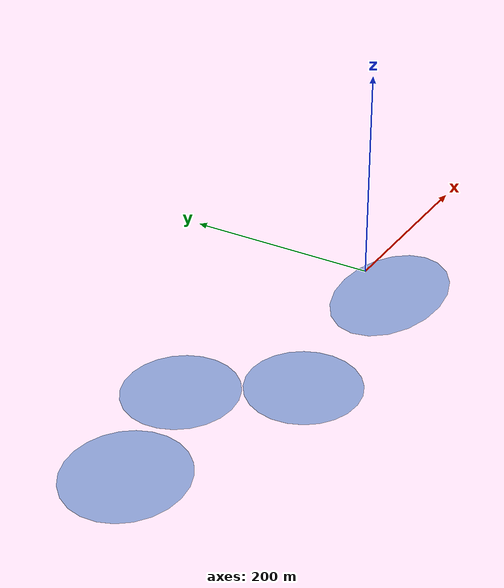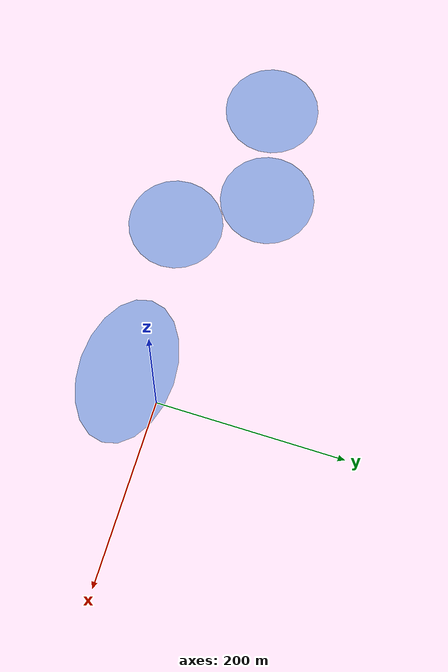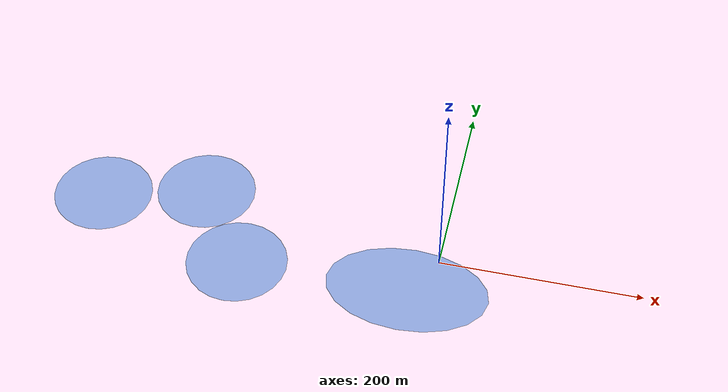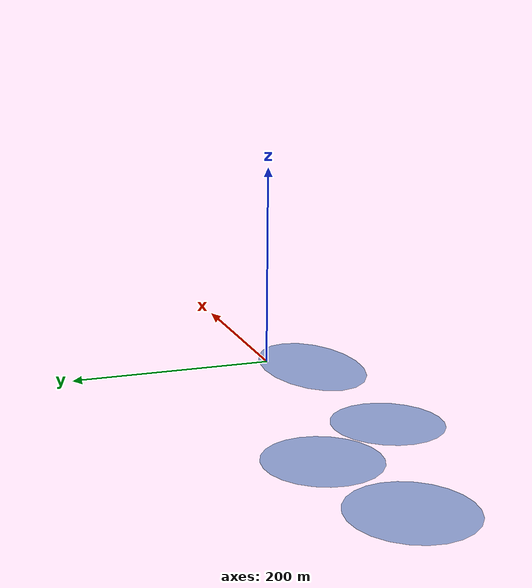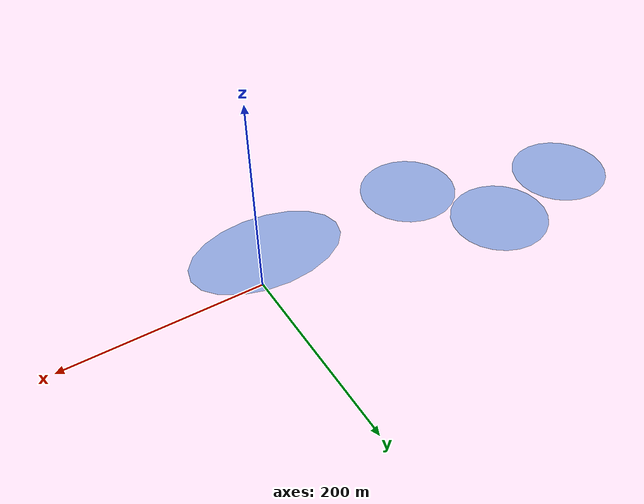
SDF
<sdf version="1.7">
 <world name="default">
  <scene>
   <sky><clouds><speed>12</speed></clouds></sky>
   <ambient>0.95 0.95 0.95 1</ambient>
   <background>0.3 0.3 0.3 1</background>
   <shadows>1</shadows>
  </scene>
  <light name="sun" type="directional">
   <pose>0 0 10 0 -0 0</pose>
   <diffuse>0.8 0.8 0.8 1</diffuse>
   <specular>0.2 0.2 0.2 1</specular>
   <attenuation>
    <range>1000</range>
    <constant>0.9</constant>
    <linear>0.01</linear>
    <quadratic>0.001</quadratic>
   </attenuation>
   <direction>-0.5 0.1 -0.9</direction>
   <spot><inner_angle>0</inner_angle><outer_angle>0</outer_angle><falloff>0</falloff></spot>
  </light>
  <spherical_coordinates>
   <surface_model>EARTH_WGS84</surface_model>
   <latitude_deg>37.4135</latitude_deg>
   <longitude_deg>-121.997</longitude_deg>
   <elevation>1.3</elevation>
   <heading_deg>0</heading_deg>
  </spherical_coordinates>
  <physics name="default_physics" default="0" type="ode">
   <ode>
    <solver>
     <type>quick</type>
     <iters>10</iters>
     <sor>1.3</sor>
     <use_dynamic_moi_rescaling>0</use_dynamic_moi_rescaling>
    </solver>
    <constraints>
     <cfm>0</cfm>
     <erp>0.2</erp>
     <contact_max_correcting_vel>100</contact_max_correcting_vel>
     <contact_surface_layer>0.001</contact_surface_layer>
    </constraints>
   </ode>
   <max_step_size>0.004</max_step_size>
   <real_time_factor>1</real_time_factor>
   <real_time_update_rate>250</real_time_update_rate>
  </physics>
  <gravity>0 0 -9.8066</gravity>
  <magnetic_field>6e-06 2.3e-05 -4.2e-05</magnetic_field>
  <atmosphere type="adiabatic"/>
  <model name="water_circle">
   <static>1</static>
   <link name="water_link">
    <visual name="water_visual">
     <cast_shadows>0</cast_shadows>
     <geometry><cylinder><radius>50</radius><length>0.01</length></cylinder></geometry>
     <material>
      <ambient>0.2 0.4 0.7 0.6</ambient>
      <diffuse>0.3 0.5 0.8 0.6</diffuse>
      <specular>0.8 0.9 1 0.3</specular>
      <emissive>0.1 0.2 0.3 0.2</emissive>
     </material>
    </visual>
   </link>
   <pose>-193.781 -41.9543 0.2 0 -0 0</pose>
  </model>
  <model name="water_ellipse">
   <static>1</static>
   <link name="water_link">
    <visual name="water_visual">
     <cast_shadows>0</cast_shadows>
     <geometry><ellipsoid><radii>80 50 0.005</radii></ellipsoid></geometry>
     <material>
      <ambient>0.2 0.4 0.7 0.6</ambient>
      <diffuse>0.3 0.5 0.8 0.6</diffuse>
      <specular>0.8 0.9 1 0.3</specular>
      <emissive>0.1 0.2 0.3 0.2</emissive>
     </material>
    </visual>
   </link>
   <pose>-24.1973 -39.2588 0 0 -0 0</pose>
  </model>
  <model name="water_circle_0">
   <static>1</static>
   <link name="water_link">
    <visual name="water_visual">
     <cast_shadows>0</cast_shadows>
     <geometry><cylinder><radius>50</radius><length>0.01</length></cylinder></geometry>
     <material>
      <ambient>0.2 0.4 0.7 0.6</ambient>
      <diffuse>0.3 0.5 0.8 0.6</diffuse>
      <specular>0.8 0.9 1 0.3</specular>
      <emissive>0.1 0.2 0.3 0.2</emissive>
     </material>
    </visual>
   </link>
   <pose>-351.409 16.2801 -0.374767 0 -0 0</pose>
  </model>
  <model name="water_circle_0_clone">
   <static>1</static>
   <link name="water_link">
    <visual name="water_visual">
     <cast_shadows>0</cast_shadows>
     <geometry><cylinder><radius>50</radius><length>0.01</length></cylinder></geometry>
     <material>
      <ambient>0.2 0.4 0.7 0.6</ambient>
      <diffuse>0.3 0.5 0.8 0.6</diffuse>
      <specular>0.8 0.9 1 0.3</specular>
      <emissive>0.1 0.2 0.3 0.2</emissive>
     </material>
    </visual>
   </link>
   <pose>-249.394 41.8912 -0.409574 0 -0 0</pose>
  </model>
 </world>
</sdf>
